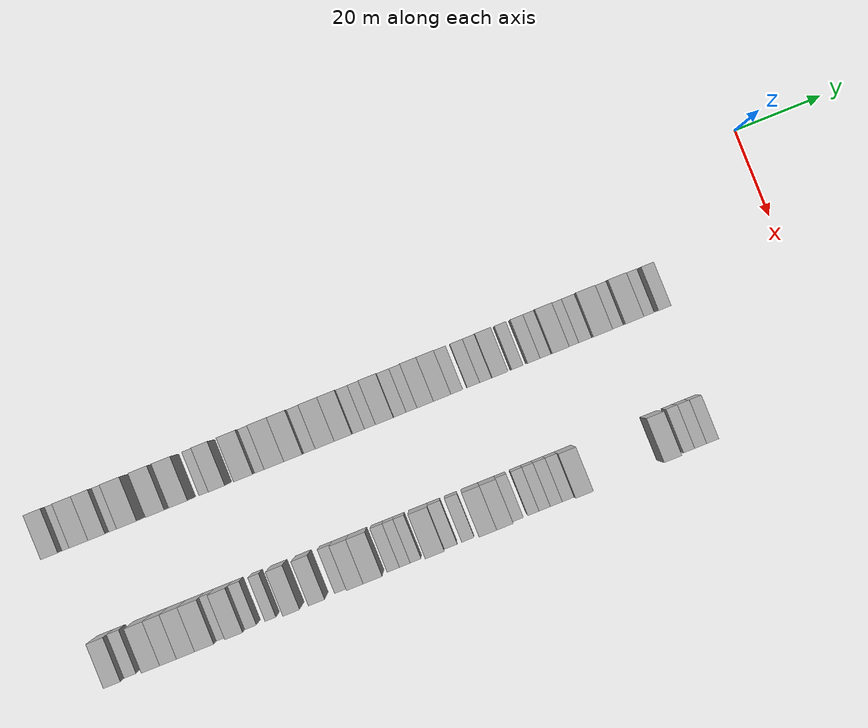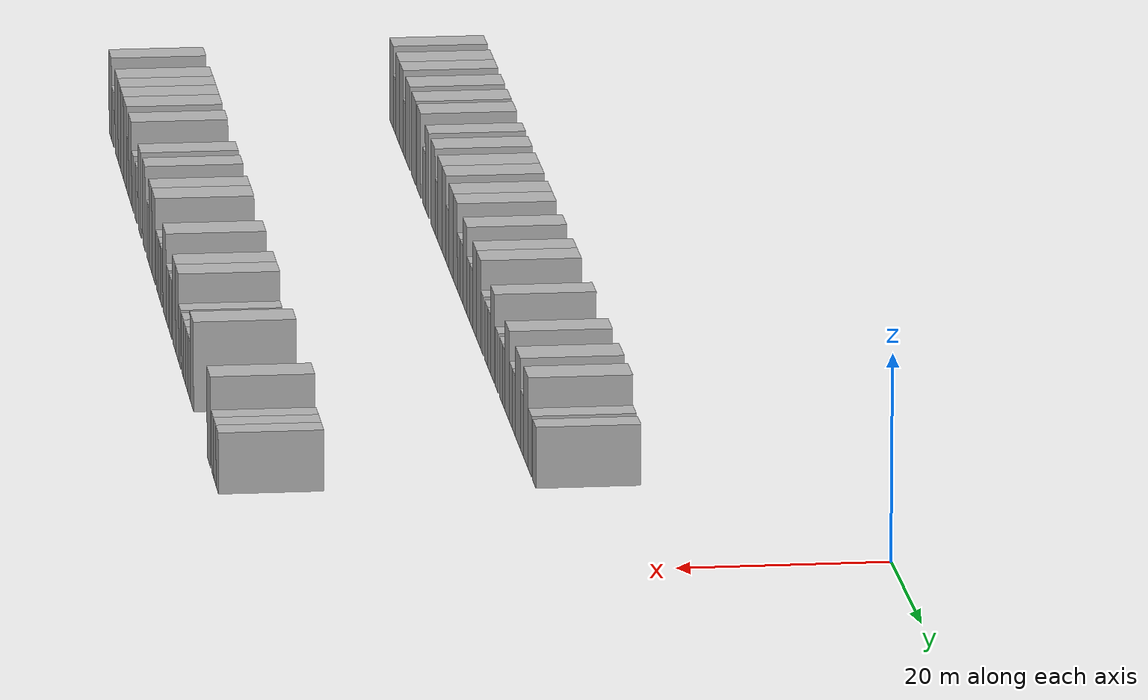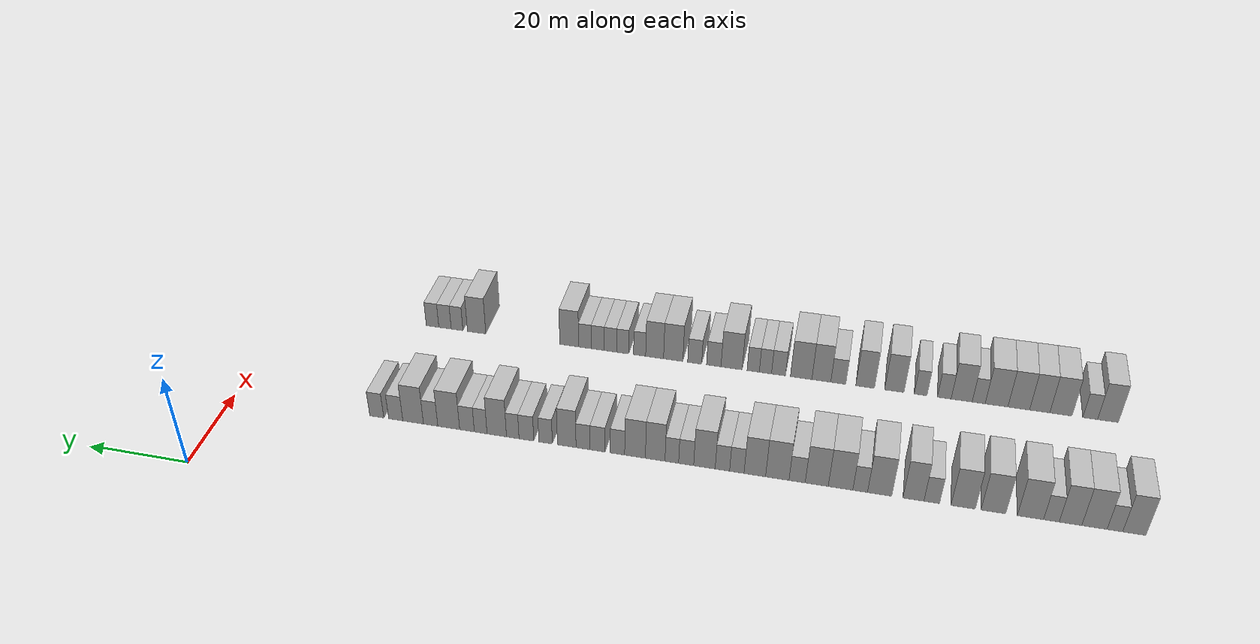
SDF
<sdf version="1.6">
 <world name="default">
  <model name="building_68">
   <static>1</static>
   <pose>25.0000 -169.5888 0 0.000000 0.000000 0.000000</pose>
   <link name="link">
    <pose>0 0 4.50 0 0 0</pose>
    <collision name="collision"><geometry><box><size>10.0000 3.8828 9.0000</size></box></geometry></collision>
    <visual name="visual">
     <cast_shadows>0</cast_shadows>
     <geometry><box><size>10.0000 3.8828 9.0000</size></box></geometry>
     <material>
      <script>
       <uri>model://HANNAS_wall/materials/scripts</uri>
       <uri>model://HANNAS_wall/materials/textures</uri>
       <name>vrc/HANNAS_wall</name>
      </script>
     </material>
    </visual>
   </link>
  </model>
  <model name="building_69">
   <static>1</static>
   <pose>25.0000 -166.3384 0 0.000000 0.000000 0.000000</pose>
   <link name="link">
    <pose>0 0 3.00 0 0 0</pose>
    <collision name="collision"><geometry><box><size>10.0000 2.6179 6.0000</size></box></geometry></collision>
    <visual name="visual">
     <cast_shadows>0</cast_shadows>
     <geometry><box><size>10.0000 2.6179 6.0000</size></box></geometry>
     <material>
      <script>
       <uri>model://HANNAS_wall/materials/scripts</uri>
       <uri>model://HANNAS_wall/materials/textures</uri>
       <name>vrc/HANNAS_wall</name>
      </script>
     </material>
    </visual>
   </link>
  </model>
  <model name="building_70">
   <static>1</static>
   <pose>25.0000 -162.9050 0 0.000000 0.000000 0.000000</pose>
   <link name="link">
    <pose>0 0 4.50 0 0 0</pose>
    <collision name="collision"><geometry><box><size>10.0000 4.2490 9.0000</size></box></geometry></collision>
    <visual name="visual">
     <cast_shadows>0</cast_shadows>
     <geometry><box><size>10.0000 4.2490 9.0000</size></box></geometry>
     <material>
      <script>
       <uri>model://HANNAS_wall/materials/scripts</uri>
       <uri>model://HANNAS_wall/materials/textures</uri>
       <name>vrc/HANNAS_wall</name>
      </script>
     </material>
    </visual>
   </link>
  </model>
  <model name="building_71">
   <static>1</static>
   <pose>25.0000 -158.8631 0 0.000000 0.000000 0.000000</pose>
   <link name="link">
    <pose>0 0 4.50 0 0 0</pose>
    <collision name="collision"><geometry><box><size>10.0000 3.8348 9.0000</size></box></geometry></collision>
    <visual name="visual">
     <cast_shadows>0</cast_shadows>
     <geometry><box><size>10.0000 3.8348 9.0000</size></box></geometry>
     <material>
      <script>
       <uri>model://HANNAS_wall/materials/scripts</uri>
       <uri>model://HANNAS_wall/materials/textures</uri>
       <name>vrc/HANNAS_wall</name>
      </script>
     </material>
    </visual>
   </link>
  </model>
  <model name="building_72">
   <static>1</static>
   <pose>25.0000 -155.6163 0 0.000000 0.000000 0.000000</pose>
   <link name="link">
    <pose>0 0 3.00 0 0 0</pose>
    <collision name="collision"><geometry><box><size>10.0000 2.6587 6.0000</size></box></geometry></collision>
    <visual name="visual">
     <cast_shadows>0</cast_shadows>
     <geometry><box><size>10.0000 2.6587 6.0000</size></box></geometry>
     <material>
      <script>
       <uri>model://HANNAS_wall/materials/scripts</uri>
       <uri>model://HANNAS_wall/materials/textures</uri>
       <name>vrc/HANNAS_wall</name>
      </script>
     </material>
    </visual>
   </link>
  </model>
  <model name="building_73">
   <static>1</static>
   <pose>25.0000 -152.0445 0 0.000000 0.000000 0.000000</pose>
   <link name="link">
    <pose>0 0 4.50 0 0 0</pose>
    <collision name="collision"><geometry><box><size>10.0000 4.4850 9.0000</size></box></geometry></collision>
    <visual name="visual">
     <cast_shadows>0</cast_shadows>
     <geometry><box><size>10.0000 4.4850 9.0000</size></box></geometry>
     <material>
      <script>
       <uri>model://HANNAS_wall/materials/scripts</uri>
       <uri>model://HANNAS_wall/materials/textures</uri>
       <name>vrc/HANNAS_wall</name>
      </script>
     </material>
    </visual>
   </link>
  </model>
  <model name="building_74">
   <static>1</static>
   <pose>25.0000 -145.6634 0 0.000000 0.000000 0.000000</pose>
   <link name="link">
    <pose>0 0 4.50 0 0 0</pose>
    <collision name="collision"><geometry><box><size>10.0000 4.2773 9.0000</size></box></geometry></collision>
    <visual name="visual">
     <cast_shadows>0</cast_shadows>
     <geometry><box><size>10.0000 4.2773 9.0000</size></box></geometry>
     <material>
      <script>
       <uri>model://HANNAS_wall/materials/scripts</uri>
       <uri>model://HANNAS_wall/materials/textures</uri>
       <name>vrc/HANNAS_wall</name>
      </script>
     </material>
    </visual>
   </link>
  </model>
  <model name="building_75">
   <static>1</static>
   <pose>25.0000 -140.4072 0 0.000000 0.000000 0.000000</pose>
   <link name="link">
    <pose>0 0 4.50 0 0 0</pose>
    <collision name="collision"><geometry><box><size>10.0000 4.2351 9.0000</size></box></geometry></collision>
    <visual name="visual">
     <cast_shadows>0</cast_shadows>
     <geometry><box><size>10.0000 4.2351 9.0000</size></box></geometry>
     <material>
      <script>
       <uri>model://HANNAS_wall/materials/scripts</uri>
       <uri>model://HANNAS_wall/materials/textures</uri>
       <name>vrc/HANNAS_wall</name>
      </script>
     </material>
    </visual>
   </link>
  </model>
  <model name="building_76">
   <static>1</static>
   <pose>25.0000 -134.9146 0 0.000000 0.000000 0.000000</pose>
   <link name="link">
    <pose>0 0 3.00 0 0 0</pose>
    <collision name="collision"><geometry><box><size>10.0000 2.7501 6.0000</size></box></geometry></collision>
    <visual name="visual">
     <cast_shadows>0</cast_shadows>
     <geometry><box><size>10.0000 2.7501 6.0000</size></box></geometry>
     <material>
      <script>
       <uri>model://HANNAS_wall/materials/scripts</uri>
       <uri>model://HANNAS_wall/materials/textures</uri>
       <name>vrc/HANNAS_wall</name>
      </script>
     </material>
    </visual>
   </link>
  </model>
  <model name="building_77">
   <static>1</static>
   <pose>25.0000 -131.6918 0 0.000000 0.000000 0.000000</pose>
   <link name="link">
    <pose>0 0 4.50 0 0 0</pose>
    <collision name="collision"><geometry><box><size>10.0000 3.6955 9.0000</size></box></geometry></collision>
    <visual name="visual">
     <cast_shadows>0</cast_shadows>
     <geometry><box><size>10.0000 3.6955 9.0000</size></box></geometry>
     <material>
      <script>
       <uri>model://HANNAS_wall/materials/scripts</uri>
       <uri>model://HANNAS_wall/materials/textures</uri>
       <name>vrc/HANNAS_wall</name>
      </script>
     </material>
    </visual>
   </link>
  </model>
  <model name="building_78">
   <static>1</static>
   <pose>25.0000 -125.6873 0 0.000000 0.000000 0.000000</pose>
   <link name="link">
    <pose>0 0 4.50 0 0 0</pose>
    <collision name="collision"><geometry><box><size>10.0000 4.3134 9.0000</size></box></geometry></collision>
    <visual name="visual">
     <cast_shadows>0</cast_shadows>
     <geometry><box><size>10.0000 4.3134 9.0000</size></box></geometry>
     <material>
      <script>
       <uri>model://HANNAS_wall/materials/scripts</uri>
       <uri>model://HANNAS_wall/materials/textures</uri>
       <name>vrc/HANNAS_wall</name>
      </script>
     </material>
    </visual>
   </link>
  </model>
  <model name="building_79">
   <static>1</static>
   <pose>25.0000 -122.2140 0 0.000000 0.000000 0.000000</pose>
   <link name="link">
    <pose>0 0 3.00 0 0 0</pose>
    <collision name="collision"><geometry><box><size>10.0000 2.6332 6.0000</size></box></geometry></collision>
    <visual name="visual">
     <cast_shadows>0</cast_shadows>
     <geometry><box><size>10.0000 2.6332 6.0000</size></box></geometry>
     <material>
      <script>
       <uri>model://HANNAS_wall/materials/scripts</uri>
       <uri>model://HANNAS_wall/materials/textures</uri>
       <name>vrc/HANNAS_wall</name>
      </script>
     </material>
    </visual>
   </link>
  </model>
  <model name="building_80">
   <static>1</static>
   <pose>25.0000 -118.6838 0 0.000000 0.000000 0.000000</pose>
   <link name="link">
    <pose>0 0 4.50 0 0 0</pose>
    <collision name="collision"><geometry><box><size>10.0000 4.4272 9.0000</size></box></geometry></collision>
    <visual name="visual">
     <cast_shadows>0</cast_shadows>
     <geometry><box><size>10.0000 4.4272 9.0000</size></box></geometry>
     <material>
      <script>
       <uri>model://HANNAS_wall/materials/scripts</uri>
       <uri>model://HANNAS_wall/materials/textures</uri>
       <name>vrc/HANNAS_wall</name>
      </script>
     </material>
    </visual>
   </link>
  </model>
  <model name="building_81">
   <static>1</static>
   <pose>25.0000 -114.3839 0 0.000000 0.000000 0.000000</pose>
   <link name="link">
    <pose>0 0 4.50 0 0 0</pose>
    <collision name="collision"><geometry><box><size>10.0000 4.1726 9.0000</size></box></geometry></collision>
    <visual name="visual">
     <cast_shadows>0</cast_shadows>
     <geometry><box><size>10.0000 4.1726 9.0000</size></box></geometry>
     <material>
      <script>
       <uri>model://HANNAS_wall/materials/scripts</uri>
       <uri>model://HANNAS_wall/materials/textures</uri>
       <name>vrc/HANNAS_wall</name>
      </script>
     </material>
    </visual>
   </link>
  </model>
  <model name="building_82">
   <static>1</static>
   <pose>25.0000 -110.8221 0 0.000000 0.000000 0.000000</pose>
   <link name="link">
    <pose>0 0 3.00 0 0 0</pose>
    <collision name="collision"><geometry><box><size>10.0000 2.9512 6.0000</size></box></geometry></collision>
    <visual name="visual">
     <cast_shadows>0</cast_shadows>
     <geometry><box><size>10.0000 2.9512 6.0000</size></box></geometry>
     <material>
      <script>
       <uri>model://HANNAS_wall/materials/scripts</uri>
       <uri>model://HANNAS_wall/materials/textures</uri>
       <name>vrc/HANNAS_wall</name>
      </script>
     </material>
    </visual>
   </link>
  </model>
  <model name="building_83">
   <static>1</static>
   <pose>25.0000 -107.2008 0 0.000000 0.000000 0.000000</pose>
   <link name="link">
    <pose>0 0 4.50 0 0 0</pose>
    <collision name="collision"><geometry><box><size>10.0000 4.2914 9.0000</size></box></geometry></collision>
    <visual name="visual">
     <cast_shadows>0</cast_shadows>
     <geometry><box><size>10.0000 4.2914 9.0000</size></box></geometry>
     <material>
      <script>
       <uri>model://HANNAS_wall/materials/scripts</uri>
       <uri>model://HANNAS_wall/materials/textures</uri>
       <name>vrc/HANNAS_wall</name>
      </script>
     </material>
    </visual>
   </link>
  </model>
  <model name="building_84">
   <static>1</static>
   <pose>25.0000 -103.0709 0 0.000000 0.000000 0.000000</pose>
   <link name="link">
    <pose>0 0 4.50 0 0 0</pose>
    <collision name="collision"><geometry><box><size>10.0000 3.9684 9.0000</size></box></geometry></collision>
    <visual name="visual">
     <cast_shadows>0</cast_shadows>
     <geometry><box><size>10.0000 3.9684 9.0000</size></box></geometry>
     <material>
      <script>
       <uri>model://HANNAS_wall/materials/scripts</uri>
       <uri>model://HANNAS_wall/materials/textures</uri>
       <name>vrc/HANNAS_wall</name>
      </script>
     </material>
    </visual>
   </link>
  </model>
  <model name="building_85">
   <static>1</static>
   <pose>25.0000 -99.7496 0 0.000000 0.000000 0.000000</pose>
   <link name="link">
    <pose>0 0 3.00 0 0 0</pose>
    <collision name="collision"><geometry><box><size>10.0000 2.6742 6.0000</size></box></geometry></collision>
    <visual name="visual">
     <cast_shadows>0</cast_shadows>
     <geometry><box><size>10.0000 2.6742 6.0000</size></box></geometry>
     <material>
      <script>
       <uri>model://HANNAS_wall/materials/scripts</uri>
       <uri>model://HANNAS_wall/materials/textures</uri>
       <name>vrc/HANNAS_wall</name>
      </script>
     </material>
    </visual>
   </link>
  </model>
  <model name="building_86">
   <static>1</static>
   <pose>25.0000 -97.0695 0 0.000000 0.000000 0.000000</pose>
   <link name="link">
    <pose>0 0 3.00 0 0 0</pose>
    <collision name="collision"><geometry><box><size>10.0000 2.6861 6.0000</size></box></geometry></collision>
    <visual name="visual">
     <cast_shadows>0</cast_shadows>
     <geometry><box><size>10.0000 2.6861 6.0000</size></box></geometry>
     <material>
      <script>
       <uri>model://HANNAS_wall/materials/scripts</uri>
       <uri>model://HANNAS_wall/materials/textures</uri>
       <name>vrc/HANNAS_wall</name>
      </script>
     </material>
    </visual>
   </link>
  </model>
  <model name="building_87">
   <static>1</static>
   <pose>25.0000 -93.7154 0 0.000000 0.000000 0.000000</pose>
   <link name="link">
    <pose>0 0 4.50 0 0 0</pose>
    <collision name="collision"><geometry><box><size>10.0000 4.0221 9.0000</size></box></geometry></collision>
    <visual name="visual">
     <cast_shadows>0</cast_shadows>
     <geometry><box><size>10.0000 4.0221 9.0000</size></box></geometry>
     <material>
      <script>
       <uri>model://HANNAS_wall/materials/scripts</uri>
       <uri>model://HANNAS_wall/materials/textures</uri>
       <name>vrc/HANNAS_wall</name>
      </script>
     </material>
    </visual>
   </link>
  </model>
  <model name="building_88">
   <static>1</static>
   <pose>25.0000 -90.2913 0 0.000000 0.000000 0.000000</pose>
   <link name="link">
    <pose>0 0 3.00 0 0 0</pose>
    <collision name="collision"><geometry><box><size>10.0000 2.8261 6.0000</size></box></geometry></collision>
    <visual name="visual">
     <cast_shadows>0</cast_shadows>
     <geometry><box><size>10.0000 2.8261 6.0000</size></box></geometry>
     <material>
      <script>
       <uri>model://HANNAS_wall/materials/scripts</uri>
       <uri>model://HANNAS_wall/materials/textures</uri>
       <name>vrc/HANNAS_wall</name>
      </script>
     </material>
    </visual>
   </link>
  </model>
  <model name="building_89">
   <static>1</static>
   <pose>25.0000 -87.5924 0 0.000000 0.000000 0.000000</pose>
   <link name="link">
    <pose>0 0 3.00 0 0 0</pose>
    <collision name="collision"><geometry><box><size>10.0000 2.5716 6.0000</size></box></geometry></collision>
    <visual name="visual">
     <cast_shadows>0</cast_shadows>
     <geometry><box><size>10.0000 2.5716 6.0000</size></box></geometry>
     <material>
      <script>
       <uri>model://HANNAS_wall/materials/scripts</uri>
       <uri>model://HANNAS_wall/materials/textures</uri>
       <name>vrc/HANNAS_wall</name>
      </script>
     </material>
    </visual>
   </link>
  </model>
  <model name="building_90">
   <static>1</static>
   <pose>25.0000 -84.4538 0 0.000000 0.000000 0.000000</pose>
   <link name="link">
    <pose>0 0 4.50 0 0 0</pose>
    <collision name="collision"><geometry><box><size>10.0000 3.7056 9.0000</size></box></geometry></collision>
    <visual name="visual">
     <cast_shadows>0</cast_shadows>
     <geometry><box><size>10.0000 3.7056 9.0000</size></box></geometry>
     <material>
      <script>
       <uri>model://HANNAS_wall/materials/scripts</uri>
       <uri>model://HANNAS_wall/materials/textures</uri>
       <name>vrc/HANNAS_wall</name>
      </script>
     </material>
    </visual>
   </link>
  </model>
  <model name="building_91">
   <static>1</static>
   <pose>25.0000 -80.6257 0 0.000000 0.000000 0.000000</pose>
   <link name="link">
    <pose>0 0 4.50 0 0 0</pose>
    <collision name="collision"><geometry><box><size>10.0000 3.9506 9.0000</size></box></geometry></collision>
    <visual name="visual">
     <cast_shadows>0</cast_shadows>
     <geometry><box><size>10.0000 3.9506 9.0000</size></box></geometry>
     <material>
      <script>
       <uri>model://HANNAS_wall/materials/scripts</uri>
       <uri>model://HANNAS_wall/materials/textures</uri>
       <name>vrc/HANNAS_wall</name>
      </script>
     </material>
    </visual>
   </link>
  </model>
  <model name="building_92">
   <static>1</static>
   <pose>25.0000 -77.2746 0 0.000000 0.000000 0.000000</pose>
   <link name="link">
    <pose>0 0 3.00 0 0 0</pose>
    <collision name="collision"><geometry><box><size>10.0000 2.7516 6.0000</size></box></geometry></collision>
    <visual name="visual">
     <cast_shadows>0</cast_shadows>
     <geometry><box><size>10.0000 2.7516 6.0000</size></box></geometry>
     <material>
      <script>
       <uri>model://HANNAS_wall/materials/scripts</uri>
       <uri>model://HANNAS_wall/materials/textures</uri>
       <name>vrc/HANNAS_wall</name>
      </script>
     </material>
    </visual>
   </link>
  </model>
  <model name="building_93">
   <static>1</static>
   <pose>25.0000 -73.4637 0 0.000000 0.000000 0.000000</pose>
   <link name="link">
    <pose>0 0 3.00 0 0 0</pose>
    <collision name="collision"><geometry><box><size>10.0000 2.8702 6.0000</size></box></geometry></collision>
    <visual name="visual">
     <cast_shadows>0</cast_shadows>
     <geometry><box><size>10.0000 2.8702 6.0000</size></box></geometry>
     <material>
      <script>
       <uri>model://HANNAS_wall/materials/scripts</uri>
       <uri>model://HANNAS_wall/materials/textures</uri>
       <name>vrc/HANNAS_wall</name>
      </script>
     </material>
    </visual>
   </link>
  </model>
  <model name="building_94">
   <static>1</static>
   <pose>25.0000 -70.6681 0 0.000000 0.000000 0.000000</pose>
   <link name="link">
    <pose>0 0 3.00 0 0 0</pose>
    <collision name="collision"><geometry><box><size>10.0000 2.7209 6.0000</size></box></geometry></collision>
    <visual name="visual">
     <cast_shadows>0</cast_shadows>
     <geometry><box><size>10.0000 2.7209 6.0000</size></box></geometry>
     <material>
      <script>
       <uri>model://HANNAS_wall/materials/scripts</uri>
       <uri>model://HANNAS_wall/materials/textures</uri>
       <name>vrc/HANNAS_wall</name>
      </script>
     </material>
    </visual>
   </link>
  </model>
  <model name="building_95">
   <static>1</static>
   <pose>25.0000 -67.5042 0 0.000000 0.000000 0.000000</pose>
   <link name="link">
    <pose>0 0 4.50 0 0 0</pose>
    <collision name="collision"><geometry><box><size>10.0000 3.6068 9.0000</size></box></geometry></collision>
    <visual name="visual">
     <cast_shadows>0</cast_shadows>
     <geometry><box><size>10.0000 3.6068 9.0000</size></box></geometry>
     <material>
      <script>
       <uri>model://HANNAS_wall/materials/scripts</uri>
       <uri>model://HANNAS_wall/materials/textures</uri>
       <name>vrc/HANNAS_wall</name>
      </script>
     </material>
    </visual>
   </link>
  </model>
  <model name="building_96">
   <static>1</static>
   <pose>25.0000 -63.3892 0 0.000000 0.000000 0.000000</pose>
   <link name="link">
    <pose>0 0 3.00 0 0 0</pose>
    <collision name="collision"><geometry><box><size>10.0000 2.6232 6.0000</size></box></geometry></collision>
    <visual name="visual">
     <cast_shadows>0</cast_shadows>
     <geometry><box><size>10.0000 2.6232 6.0000</size></box></geometry>
     <material>
      <script>
       <uri>model://HANNAS_wall/materials/scripts</uri>
       <uri>model://HANNAS_wall/materials/textures</uri>
       <name>vrc/HANNAS_wall</name>
      </script>
     </material>
    </visual>
   </link>
  </model>
  <model name="building_97">
   <static>1</static>
   <pose>25.0000 -59.6329 0 0.000000 0.000000 0.000000</pose>
   <link name="link">
    <pose>0 0 3.00 0 0 0</pose>
    <collision name="collision"><geometry><box><size>10.0000 2.8894 6.0000</size></box></geometry></collision>
    <visual name="visual">
     <cast_shadows>0</cast_shadows>
     <geometry><box><size>10.0000 2.8894 6.0000</size></box></geometry>
     <material>
      <script>
       <uri>model://HANNAS_wall/materials/scripts</uri>
       <uri>model://HANNAS_wall/materials/textures</uri>
       <name>vrc/HANNAS_wall</name>
      </script>
     </material>
    </visual>
   </link>
  </model>
  <model name="building_98">
   <static>1</static>
   <pose>25.0000 -56.9498 0 0.000000 0.000000 0.000000</pose>
   <link name="link">
    <pose>0 0 3.00 0 0 0</pose>
    <collision name="collision"><geometry><box><size>10.0000 2.4768 6.0000</size></box></geometry></collision>
    <visual name="visual">
     <cast_shadows>0</cast_shadows>
     <geometry><box><size>10.0000 2.4768 6.0000</size></box></geometry>
     <material>
      <script>
       <uri>model://HANNAS_wall/materials/scripts</uri>
       <uri>model://HANNAS_wall/materials/textures</uri>
       <name>vrc/HANNAS_wall</name>
      </script>
     </material>
    </visual>
   </link>
  </model>
  <model name="building_99">
   <static>1</static>
   <pose>25.0000 -53.7878 0 0.000000 0.000000 0.000000</pose>
   <link name="link">
    <pose>0 0 4.50 0 0 0</pose>
    <collision name="collision"><geometry><box><size>10.0000 3.8472 9.0000</size></box></geometry></collision>
    <visual name="visual">
     <cast_shadows>0</cast_shadows>
     <geometry><box><size>10.0000 3.8472 9.0000</size></box></geometry>
     <material>
      <script>
       <uri>model://HANNAS_wall/materials/scripts</uri>
       <uri>model://HANNAS_wall/materials/textures</uri>
       <name>vrc/HANNAS_wall</name>
      </script>
     </material>
    </visual>
   </link>
  </model>
  <model name="building_100">
   <static>1</static>
   <pose>25.0000 -50.6011 0 0.000000 0.000000 0.000000</pose>
   <link name="link">
    <pose>0 0 3.00 0 0 0</pose>
    <collision name="collision"><geometry><box><size>10.0000 2.5262 6.0000</size></box></geometry></collision>
    <visual name="visual">
     <cast_shadows>0</cast_shadows>
     <geometry><box><size>10.0000 2.5262 6.0000</size></box></geometry>
     <material>
      <script>
       <uri>model://HANNAS_wall/materials/scripts</uri>
       <uri>model://HANNAS_wall/materials/textures</uri>
       <name>vrc/HANNAS_wall</name>
      </script>
     </material>
    </visual>
   </link>
  </model>
  <model name="building_101">
   <static>1</static>
   <pose>25.0000 -47.8728 0 0.000000 0.000000 0.000000</pose>
   <link name="link">
    <pose>0 0 3.00 0 0 0</pose>
    <collision name="collision"><geometry><box><size>10.0000 2.9304 6.0000</size></box></geometry></collision>
    <visual name="visual">
     <cast_shadows>0</cast_shadows>
     <geometry><box><size>10.0000 2.9304 6.0000</size></box></geometry>
     <material>
      <script>
       <uri>model://HANNAS_wall/materials/scripts</uri>
       <uri>model://HANNAS_wall/materials/textures</uri>
       <name>vrc/HANNAS_wall</name>
      </script>
     </material>
    </visual>
   </link>
  </model>
  <model name="building_102">
   <static>1</static>
   <pose>25.0000 -44.2151 0 0.000000 0.000000 0.000000</pose>
   <link name="link">
    <pose>0 0 4.50 0 0 0</pose>
    <collision name="collision"><geometry><box><size>10.0000 4.3851 9.0000</size></box></geometry></collision>
    <visual name="visual">
     <cast_shadows>0</cast_shadows>
     <geometry><box><size>10.0000 4.3851 9.0000</size></box></geometry>
     <material>
      <script>
       <uri>model://HANNAS_wall/materials/scripts</uri>
       <uri>model://HANNAS_wall/materials/textures</uri>
       <name>vrc/HANNAS_wall</name>
      </script>
     </material>
    </visual>
   </link>
  </model>
  <model name="building_103">
   <static>1</static>
   <pose>25.0000 -40.5805 0 0.000000 0.000000 0.000000</pose>
   <link name="link">
    <pose>0 0 3.00 0 0 0</pose>
    <collision name="collision"><geometry><box><size>10.0000 2.8840 6.0000</size></box></geometry></collision>
    <visual name="visual">
     <cast_shadows>0</cast_shadows>
     <geometry><box><size>10.0000 2.8840 6.0000</size></box></geometry>
     <material>
      <script>
       <uri>model://HANNAS_wall/materials/scripts</uri>
       <uri>model://HANNAS_wall/materials/textures</uri>
       <name>vrc/HANNAS_wall</name>
      </script>
     </material>
    </visual>
   </link>
  </model>
  <model name="building_104">
   <static>1</static>
   <pose>25.0000 -37.0463 0 0.000000 0.000000 0.000000</pose>
   <link name="link">
    <pose>0 0 4.50 0 0 0</pose>
    <collision name="collision"><geometry><box><size>10.0000 4.1844 9.0000</size></box></geometry></collision>
    <visual name="visual">
     <cast_shadows>0</cast_shadows>
     <geometry><box><size>10.0000 4.1844 9.0000</size></box></geometry>
     <material>
      <script>
       <uri>model://HANNAS_wall/materials/scripts</uri>
       <uri>model://HANNAS_wall/materials/textures</uri>
       <name>vrc/HANNAS_wall</name>
      </script>
     </material>
    </visual>
   </link>
  </model>
  <model name="building_105">
   <static>1</static>
   <pose>25.0000 -33.5147 0 0.000000 0.000000 0.000000</pose>
   <link name="link">
    <pose>0 0 3.00 0 0 0</pose>
    <collision name="collision"><geometry><box><size>10.0000 2.8788 6.0000</size></box></geometry></collision>
    <visual name="visual">
     <cast_shadows>0</cast_shadows>
     <geometry><box><size>10.0000 2.8788 6.0000</size></box></geometry>
     <material>
      <script>
       <uri>model://HANNAS_wall/materials/scripts</uri>
       <uri>model://HANNAS_wall/materials/textures</uri>
       <name>vrc/HANNAS_wall</name>
      </script>
     </material>
    </visual>
   </link>
  </model>
  <model name="building_106">
   <static>1</static>
   <pose>25.0000 -29.6392 0 0.000000 0.000000 0.000000</pose>
   <link name="link">
    <pose>0 0 3.00 0 0 0</pose>
    <collision name="collision"><geometry><box><size>10.0000 2.8723 6.0000</size></box></geometry></collision>
    <visual name="visual">
     <cast_shadows>0</cast_shadows>
     <geometry><box><size>10.0000 2.8723 6.0000</size></box></geometry>
     <material>
      <script>
       <uri>model://HANNAS_wall/materials/scripts</uri>
       <uri>model://HANNAS_wall/materials/textures</uri>
       <name>vrc/HANNAS_wall</name>
      </script>
     </material>
    </visual>
   </link>
  </model>
  <model name="building_301">
   <static>1</static>
   <pose>55.0000 -167.4663 0 0.000000 0.000000 0.000000</pose>
   <link name="link">
    <pose>0 0 4.50 0 0 0</pose>
    <collision name="collision"><geometry><box><size>10.0000 3.8509 9.0000</size></box></geometry></collision>
    <visual name="visual">
     <cast_shadows>0</cast_shadows>
     <geometry><box><size>10.0000 3.8509 9.0000</size></box></geometry>
     <material>
      <script>
       <uri>model://HANNAS_wall/materials/scripts</uri>
       <uri>model://HANNAS_wall/materials/textures</uri>
       <name>vrc/HANNAS_wall</name>
      </script>
     </material>
    </visual>
   </link>
  </model>
  <model name="building_302">
   <static>1</static>
   <pose>55.0000 -164.1707 0 0.000000 0.000000 0.000000</pose>
   <link name="link">
    <pose>0 0 3.00 0 0 0</pose>
    <collision name="collision"><geometry><box><size>10.0000 2.7403 6.0000</size></box></geometry></collision>
    <visual name="visual">
     <cast_shadows>0</cast_shadows>
     <geometry><box><size>10.0000 2.7403 6.0000</size></box></geometry>
     <material>
      <script>
       <uri>model://HANNAS_wall/materials/scripts</uri>
       <uri>model://HANNAS_wall/materials/textures</uri>
       <name>vrc/HANNAS_wall</name>
      </script>
     </material>
    </visual>
   </link>
  </model>
  <model name="building_303">
   <static>1</static>
   <pose>55.0000 -158.7203 0 0.000000 0.000000 0.000000</pose>
   <link name="link">
    <pose>0 0 4.50 0 0 0</pose>
    <collision name="collision"><geometry><box><size>10.0000 4.1605 9.0000</size></box></geometry></collision>
    <visual name="visual">
     <cast_shadows>0</cast_shadows>
     <geometry><box><size>10.0000 4.1605 9.0000</size></box></geometry>
     <material>
      <script>
       <uri>model://HANNAS_wall/materials/scripts</uri>
       <uri>model://HANNAS_wall/materials/textures</uri>
       <name>vrc/HANNAS_wall</name>
      </script>
     </material>
    </visual>
   </link>
  </model>
  <model name="building_304">
   <static>1</static>
   <pose>55.0000 -154.7364 0 0.000000 0.000000 0.000000</pose>
   <link name="link">
    <pose>0 0 4.50 0 0 0</pose>
    <collision name="collision"><geometry><box><size>10.0000 3.8073 9.0000</size></box></geometry></collision>
    <visual name="visual">
     <cast_shadows>0</cast_shadows>
     <geometry><box><size>10.0000 3.8073 9.0000</size></box></geometry>
     <material>
      <script>
       <uri>model://HANNAS_wall/materials/scripts</uri>
       <uri>model://HANNAS_wall/materials/textures</uri>
       <name>vrc/HANNAS_wall</name>
      </script>
     </material>
    </visual>
   </link>
  </model>
  <model name="building_305">
   <static>1</static>
   <pose>55.0000 -150.7840 0 0.000000 0.000000 0.000000</pose>
   <link name="link">
    <pose>0 0 4.50 0 0 0</pose>
    <collision name="collision"><geometry><box><size>10.0000 4.0975 9.0000</size></box></geometry></collision>
    <visual name="visual">
     <cast_shadows>0</cast_shadows>
     <geometry><box><size>10.0000 4.0975 9.0000</size></box></geometry>
     <material>
      <script>
       <uri>model://HANNAS_wall/materials/scripts</uri>
       <uri>model://HANNAS_wall/materials/textures</uri>
       <name>vrc/HANNAS_wall</name>
      </script>
     </material>
    </visual>
   </link>
  </model>
  <model name="building_306">
   <static>1</static>
   <pose>55.0000 -146.5736 0 0.000000 0.000000 0.000000</pose>
   <link name="link">
    <pose>0 0 4.50 0 0 0</pose>
    <collision name="collision"><geometry><box><size>10.0000 4.3233 9.0000</size></box></geometry></collision>
    <visual name="visual">
     <cast_shadows>0</cast_shadows>
     <geometry><box><size>10.0000 4.3233 9.0000</size></box></geometry>
     <material>
      <script>
       <uri>model://HANNAS_wall/materials/scripts</uri>
       <uri>model://HANNAS_wall/materials/textures</uri>
       <name>vrc/HANNAS_wall</name>
      </script>
     </material>
    </visual>
   </link>
  </model>
  <model name="building_307">
   <static>1</static>
   <pose>55.0000 -143.1673 0 0.000000 0.000000 0.000000</pose>
   <link name="link">
    <pose>0 0 3.00 0 0 0</pose>
    <collision name="collision"><geometry><box><size>10.0000 2.4893 6.0000</size></box></geometry></collision>
    <visual name="visual">
     <cast_shadows>0</cast_shadows>
     <geometry><box><size>10.0000 2.4893 6.0000</size></box></geometry>
     <material>
      <script>
       <uri>model://HANNAS_wall/materials/scripts</uri>
       <uri>model://HANNAS_wall/materials/textures</uri>
       <name>vrc/HANNAS_wall</name>
      </script>
     </material>
    </visual>
   </link>
  </model>
  <model name="building_308">
   <static>1</static>
   <pose>55.0000 -139.9082 0 0.000000 0.000000 0.000000</pose>
   <link name="link">
    <pose>0 0 4.50 0 0 0</pose>
    <collision name="collision"><geometry><box><size>10.0000 4.0288 9.0000</size></box></geometry></collision>
    <visual name="visual">
     <cast_shadows>0</cast_shadows>
     <geometry><box><size>10.0000 4.0288 9.0000</size></box></geometry>
     <material>
      <script>
       <uri>model://HANNAS_wall/materials/scripts</uri>
       <uri>model://HANNAS_wall/materials/textures</uri>
       <name>vrc/HANNAS_wall</name>
      </script>
     </material>
    </visual>
   </link>
  </model>
  <model name="building_309">
   <static>1</static>
   <pose>55.0000 -136.5681 0 0.000000 0.000000 0.000000</pose>
   <link name="link">
    <pose>0 0 3.00 0 0 0</pose>
    <collision name="collision"><geometry><box><size>10.0000 2.6514 6.0000</size></box></geometry></collision>
    <visual name="visual">
     <cast_shadows>0</cast_shadows>
     <geometry><box><size>10.0000 2.6514 6.0000</size></box></geometry>
     <material>
      <script>
       <uri>model://HANNAS_wall/materials/scripts</uri>
       <uri>model://HANNAS_wall/materials/textures</uri>
       <name>vrc/HANNAS_wall</name>
      </script>
     </material>
    </visual>
   </link>
  </model>
  <model name="building_310">
   <static>1</static>
   <pose>55.0000 -132.0043 0 0.000000 0.000000 0.000000</pose>
   <link name="link">
    <pose>0 0 3.00 0 0 0</pose>
    <collision name="collision"><geometry><box><size>10.0000 2.4762 6.0000</size></box></geometry></collision>
    <visual name="visual">
     <cast_shadows>0</cast_shadows>
     <geometry><box><size>10.0000 2.4762 6.0000</size></box></geometry>
     <material>
      <script>
       <uri>model://HANNAS_wall/materials/scripts</uri>
       <uri>model://HANNAS_wall/materials/textures</uri>
       <name>vrc/HANNAS_wall</name>
      </script>
     </material>
    </visual>
   </link>
  </model>
  <model name="building_311">
   <static>1</static>
   <pose>55.0000 -126.8741 0 0.000000 0.000000 0.000000</pose>
   <link name="link">
    <pose>0 0 4.50 0 0 0</pose>
    <collision name="collision"><geometry><box><size>10.0000 3.7841 9.0000</size></box></geometry></collision>
    <visual name="visual">
     <cast_shadows>0</cast_shadows>
     <geometry><box><size>10.0000 3.7841 9.0000</size></box></geometry>
     <material>
      <script>
       <uri>model://HANNAS_wall/materials/scripts</uri>
       <uri>model://HANNAS_wall/materials/textures</uri>
       <name>vrc/HANNAS_wall</name>
      </script>
     </material>
    </visual>
   </link>
  </model>
  <model name="building_312">
   <static>1</static>
   <pose>55.0000 -121.1529 0 0.000000 0.000000 0.000000</pose>
   <link name="link">
    <pose>0 0 4.50 0 0 0</pose>
    <collision name="collision"><geometry><box><size>10.0000 3.6582 9.0000</size></box></geometry></collision>
    <visual name="visual">
     <cast_shadows>0</cast_shadows>
     <geometry><box><size>10.0000 3.6582 9.0000</size></box></geometry>
     <material>
      <script>
       <uri>model://HANNAS_wall/materials/scripts</uri>
       <uri>model://HANNAS_wall/materials/textures</uri>
       <name>vrc/HANNAS_wall</name>
      </script>
     </material>
    </visual>
   </link>
  </model>
  <model name="building_313">
   <static>1</static>
   <pose>55.0000 -115.8399 0 0.000000 0.000000 0.000000</pose>
   <link name="link">
    <pose>0 0 3.00 0 0 0</pose>
    <collision name="collision"><geometry><box><size>10.0000 2.9679 6.0000</size></box></geometry></collision>
    <visual name="visual">
     <cast_shadows>0</cast_shadows>
     <geometry><box><size>10.0000 2.9679 6.0000</size></box></geometry>
     <material>
      <script>
       <uri>model://HANNAS_wall/materials/scripts</uri>
       <uri>model://HANNAS_wall/materials/textures</uri>
       <name>vrc/HANNAS_wall</name>
      </script>
     </material>
    </visual>
   </link>
  </model>
  <model name="building_314">
   <static>1</static>
   <pose>55.0000 -112.4702 0 0.000000 0.000000 0.000000</pose>
   <link name="link">
    <pose>0 0 4.50 0 0 0</pose>
    <collision name="collision"><geometry><box><size>10.0000 3.7717 9.0000</size></box></geometry></collision>
    <visual name="visual">
     <cast_shadows>0</cast_shadows>
     <geometry><box><size>10.0000 3.7717 9.0000</size></box></geometry>
     <material>
      <script>
       <uri>model://HANNAS_wall/materials/scripts</uri>
       <uri>model://HANNAS_wall/materials/textures</uri>
       <name>vrc/HANNAS_wall</name>
      </script>
     </material>
    </visual>
   </link>
  </model>
  <model name="building_315">
   <static>1</static>
   <pose>55.0000 -108.4372 0 0.000000 0.000000 0.000000</pose>
   <link name="link">
    <pose>0 0 4.50 0 0 0</pose>
    <collision name="collision"><geometry><box><size>10.0000 4.2943 9.0000</size></box></geometry></collision>
    <visual name="visual">
     <cast_shadows>0</cast_shadows>
     <geometry><box><size>10.0000 4.2943 9.0000</size></box></geometry>
     <material>
      <script>
       <uri>model://HANNAS_wall/materials/scripts</uri>
       <uri>model://HANNAS_wall/materials/textures</uri>
       <name>vrc/HANNAS_wall</name>
      </script>
     </material>
    </visual>
   </link>
  </model>
  <model name="building_316">
   <static>1</static>
   <pose>55.0000 -103.8839 0 0.000000 0.000000 0.000000</pose>
   <link name="link">
    <pose>0 0 3.00 0 0 0</pose>
    <collision name="collision"><geometry><box><size>10.0000 2.8123 6.0000</size></box></geometry></collision>
    <visual name="visual">
     <cast_shadows>0</cast_shadows>
     <geometry><box><size>10.0000 2.8123 6.0000</size></box></geometry>
     <material>
      <script>
       <uri>model://HANNAS_wall/materials/scripts</uri>
       <uri>model://HANNAS_wall/materials/textures</uri>
       <name>vrc/HANNAS_wall</name>
      </script>
     </material>
    </visual>
   </link>
  </model>
  <model name="building_317">
   <static>1</static>
   <pose>55.0000 -101.2466 0 0.000000 0.000000 0.000000</pose>
   <link name="link">
    <pose>0 0 3.00 0 0 0</pose>
    <collision name="collision"><geometry><box><size>10.0000 2.4622 6.0000</size></box></geometry></collision>
    <visual name="visual">
     <cast_shadows>0</cast_shadows>
     <geometry><box><size>10.0000 2.4622 6.0000</size></box></geometry>
     <material>
      <script>
       <uri>model://HANNAS_wall/materials/scripts</uri>
       <uri>model://HANNAS_wall/materials/textures</uri>
       <name>vrc/HANNAS_wall</name>
      </script>
     </material>
    </visual>
   </link>
  </model>
  <model name="building_318">
   <static>1</static>
   <pose>55.0000 -98.7724 0 0.000000 0.000000 0.000000</pose>
   <link name="link">
    <pose>0 0 3.00 0 0 0</pose>
    <collision name="collision"><geometry><box><size>10.0000 2.4861 6.0000</size></box></geometry></collision>
    <visual name="visual">
     <cast_shadows>0</cast_shadows>
     <geometry><box><size>10.0000 2.4861 6.0000</size></box></geometry>
     <material>
      <script>
       <uri>model://HANNAS_wall/materials/scripts</uri>
       <uri>model://HANNAS_wall/materials/textures</uri>
       <name>vrc/HANNAS_wall</name>
      </script>
     </material>
    </visual>
   </link>
  </model>
  <model name="building_319">
   <static>1</static>
   <pose>55.0000 -94.3716 0 0.000000 0.000000 0.000000</pose>
   <link name="link">
    <pose>0 0 4.50 0 0 0</pose>
    <collision name="collision"><geometry><box><size>10.0000 4.3154 9.0000</size></box></geometry></collision>
    <visual name="visual">
     <cast_shadows>0</cast_shadows>
     <geometry><box><size>10.0000 4.3154 9.0000</size></box></geometry>
     <material>
      <script>
       <uri>model://HANNAS_wall/materials/scripts</uri>
       <uri>model://HANNAS_wall/materials/textures</uri>
       <name>vrc/HANNAS_wall</name>
      </script>
     </material>
    </visual>
   </link>
  </model>
  <model name="building_320">
   <static>1</static>
   <pose>55.0000 -90.7262 0 0.000000 0.000000 0.000000</pose>
   <link name="link">
    <pose>0 0 3.00 0 0 0</pose>
    <collision name="collision"><geometry><box><size>10.0000 2.9755 6.0000</size></box></geometry></collision>
    <visual name="visual">
     <cast_shadows>0</cast_shadows>
     <geometry><box><size>10.0000 2.9755 6.0000</size></box></geometry>
     <material>
      <script>
       <uri>model://HANNAS_wall/materials/scripts</uri>
       <uri>model://HANNAS_wall/materials/textures</uri>
       <name>vrc/HANNAS_wall</name>
      </script>
     </material>
    </visual>
   </link>
  </model>
  <model name="building_321">
   <static>1</static>
   <pose>55.0000 -86.7959 0 0.000000 0.000000 0.000000</pose>
   <link name="link">
    <pose>0 0 3.00 0 0 0</pose>
    <collision name="collision"><geometry><box><size>10.0000 2.8850 6.0000</size></box></geometry></collision>
    <visual name="visual">
     <cast_shadows>0</cast_shadows>
     <geometry><box><size>10.0000 2.8850 6.0000</size></box></geometry>
     <material>
      <script>
       <uri>model://HANNAS_wall/materials/scripts</uri>
       <uri>model://HANNAS_wall/materials/textures</uri>
       <name>vrc/HANNAS_wall</name>
      </script>
     </material>
    </visual>
   </link>
  </model>
  <model name="building_322">
   <static>1</static>
   <pose>55.0000 -82.3535 0 0.000000 0.000000 0.000000</pose>
   <link name="link">
    <pose>0 0 4.50 0 0 0</pose>
    <collision name="collision"><geometry><box><size>10.0000 3.9998 9.0000</size></box></geometry></collision>
    <visual name="visual">
     <cast_shadows>0</cast_shadows>
     <geometry><box><size>10.0000 3.9998 9.0000</size></box></geometry>
     <material>
      <script>
       <uri>model://HANNAS_wall/materials/scripts</uri>
       <uri>model://HANNAS_wall/materials/textures</uri>
       <name>vrc/HANNAS_wall</name>
      </script>
     </material>
    </visual>
   </link>
  </model>
  <model name="building_323">
   <static>1</static>
   <pose>55.0000 -78.4899 0 0.000000 0.000000 0.000000</pose>
   <link name="link">
    <pose>0 0 4.50 0 0 0</pose>
    <collision name="collision"><geometry><box><size>10.0000 3.7274 9.0000</size></box></geometry></collision>
    <visual name="visual">
     <cast_shadows>0</cast_shadows>
     <geometry><box><size>10.0000 3.7274 9.0000</size></box></geometry>
     <material>
      <script>
       <uri>model://HANNAS_wall/materials/scripts</uri>
       <uri>model://HANNAS_wall/materials/textures</uri>
       <name>vrc/HANNAS_wall</name>
      </script>
     </material>
    </visual>
   </link>
  </model>
  <model name="building_324">
   <static>1</static>
   <pose>55.0000 -75.3587 0 0.000000 0.000000 0.000000</pose>
   <link name="link">
    <pose>0 0 3.00 0 0 0</pose>
    <collision name="collision"><geometry><box><size>10.0000 2.5348 6.0000</size></box></geometry></collision>
    <visual name="visual">
     <cast_shadows>0</cast_shadows>
     <geometry><box><size>10.0000 2.5348 6.0000</size></box></geometry>
     <material>
      <script>
       <uri>model://HANNAS_wall/materials/scripts</uri>
       <uri>model://HANNAS_wall/materials/textures</uri>
       <name>vrc/HANNAS_wall</name>
      </script>
     </material>
    </visual>
   </link>
  </model>
  <model name="building_325">
   <static>1</static>
   <pose>55.0000 -71.7987 0 0.000000 0.000000 0.000000</pose>
   <link name="link">
    <pose>0 0 3.00 0 0 0</pose>
    <collision name="collision"><geometry><box><size>10.0000 2.5852 6.0000</size></box></geometry></collision>
    <visual name="visual">
     <cast_shadows>0</cast_shadows>
     <geometry><box><size>10.0000 2.5852 6.0000</size></box></geometry>
     <material>
      <script>
       <uri>model://HANNAS_wall/materials/scripts</uri>
       <uri>model://HANNAS_wall/materials/textures</uri>
       <name>vrc/HANNAS_wall</name>
      </script>
     </material>
    </visual>
   </link>
  </model>
  <model name="building_326">
   <static>1</static>
   <pose>55.0000 -69.2178 0 0.000000 0.000000 0.000000</pose>
   <link name="link">
    <pose>0 0 3.00 0 0 0</pose>
    <collision name="collision"><geometry><box><size>10.0000 2.5765 6.0000</size></box></geometry></collision>
    <visual name="visual">
     <cast_shadows>0</cast_shadows>
     <geometry><box><size>10.0000 2.5765 6.0000</size></box></geometry>
     <material>
      <script>
       <uri>model://HANNAS_wall/materials/scripts</uri>
       <uri>model://HANNAS_wall/materials/textures</uri>
       <name>vrc/HANNAS_wall</name>
      </script>
     </material>
    </visual>
   </link>
  </model>
  <model name="building_327">
   <static>1</static>
   <pose>55.0000 -66.5559 0 0.000000 0.000000 0.000000</pose>
   <link name="link">
    <pose>0 0 3.00 0 0 0</pose>
    <collision name="collision"><geometry><box><size>10.0000 2.7475 6.0000</size></box></geometry></collision>
    <visual name="visual">
     <cast_shadows>0</cast_shadows>
     <geometry><box><size>10.0000 2.7475 6.0000</size></box></geometry>
     <material>
      <script>
       <uri>model://HANNAS_wall/materials/scripts</uri>
       <uri>model://HANNAS_wall/materials/textures</uri>
       <name>vrc/HANNAS_wall</name>
      </script>
     </material>
    </visual>
   </link>
  </model>
  <model name="building_328">
   <static>1</static>
   <pose>55.0000 -63.8342 0 0.000000 0.000000 0.000000</pose>
   <link name="link">
    <pose>0 0 3.00 0 0 0</pose>
    <collision name="collision"><geometry><box><size>10.0000 2.6960 6.0000</size></box></geometry></collision>
    <visual name="visual">
     <cast_shadows>0</cast_shadows>
     <geometry><box><size>10.0000 2.6960 6.0000</size></box></geometry>
     <material>
      <script>
       <uri>model://HANNAS_wall/materials/scripts</uri>
       <uri>model://HANNAS_wall/materials/textures</uri>
       <name>vrc/HANNAS_wall</name>
      </script>
     </material>
    </visual>
   </link>
  </model>
  <model name="building_329">
   <static>1</static>
   <pose>55.0000 -60.4788 0 0.000000 0.000000 0.000000</pose>
   <link name="link">
    <pose>0 0 4.50 0 0 0</pose>
    <collision name="collision"><geometry><box><size>10.0000 4.0148 9.0000</size></box></geometry></collision>
    <visual name="visual">
     <cast_shadows>0</cast_shadows>
     <geometry><box><size>10.0000 4.0148 9.0000</size></box></geometry>
     <material>
      <script>
       <uri>model://HANNAS_wall/materials/scripts</uri>
       <uri>model://HANNAS_wall/materials/textures</uri>
       <name>vrc/HANNAS_wall</name>
      </script>
     </material>
    </visual>
   </link>
  </model>
  <model name="building_330">
   <static>1</static>
   <pose>55.0000 -40.4555 0 0.000000 0.000000 0.000000</pose>
   <link name="link">
    <pose>0 0 4.50 0 0 0</pose>
    <collision name="collision"><geometry><box><size>10.0000 4.0106 9.0000</size></box></geometry></collision>
    <visual name="visual">
     <cast_shadows>0</cast_shadows>
     <geometry><box><size>10.0000 4.0106 9.0000</size></box></geometry>
     <material>
      <script>
       <uri>model://HANNAS_wall/materials/scripts</uri>
       <uri>model://HANNAS_wall/materials/textures</uri>
       <name>vrc/HANNAS_wall</name>
      </script>
     </material>
    </visual>
   </link>
  </model>
  <model name="building_331">
   <static>1</static>
   <pose>55.0000 -36.1600 0 0.000000 0.000000 0.000000</pose>
   <link name="link">
    <pose>0 0 3.00 0 0 0</pose>
    <collision name="collision"><geometry><box><size>10.0000 2.5803 6.0000</size></box></geometry></collision>
    <visual name="visual">
     <cast_shadows>0</cast_shadows>
     <geometry><box><size>10.0000 2.5803 6.0000</size></box></geometry>
     <material>
      <script>
       <uri>model://HANNAS_wall/materials/scripts</uri>
       <uri>model://HANNAS_wall/materials/textures</uri>
       <name>vrc/HANNAS_wall</name>
      </script>
     </material>
    </visual>
   </link>
  </model>
  <model name="building_332">
   <static>1</static>
   <pose>55.0000 -33.4985 0 0.000000 0.000000 0.000000</pose>
   <link name="link">
    <pose>0 0 3.00 0 0 0</pose>
    <collision name="collision"><geometry><box><size>10.0000 2.7428 6.0000</size></box></geometry></collision>
    <visual name="visual">
     <cast_shadows>0</cast_shadows>
     <geometry><box><size>10.0000 2.7428 6.0000</size></box></geometry>
     <material>
      <script>
       <uri>model://HANNAS_wall/materials/scripts</uri>
       <uri>model://HANNAS_wall/materials/textures</uri>
       <name>vrc/HANNAS_wall</name>
      </script>
     </material>
    </visual>
   </link>
  </model>
  <model name="building_333">
   <static>1</static>
   <pose>55.0000 -30.7432 0 0.000000 0.000000 0.000000</pose>
   <link name="link">
    <pose>0 0 3.00 0 0 0</pose>
    <collision name="collision"><geometry><box><size>10.0000 2.7677 6.0000</size></box></geometry></collision>
    <visual name="visual">
     <cast_shadows>0</cast_shadows>
     <geometry><box><size>10.0000 2.7677 6.0000</size></box></geometry>
     <material>
      <script>
       <uri>model://HANNAS_wall/materials/scripts</uri>
       <uri>model://HANNAS_wall/materials/textures</uri>
       <name>vrc/HANNAS_wall</name>
      </script>
     </material>
    </visual>
   </link>
  </model>
 </world>
</sdf>
